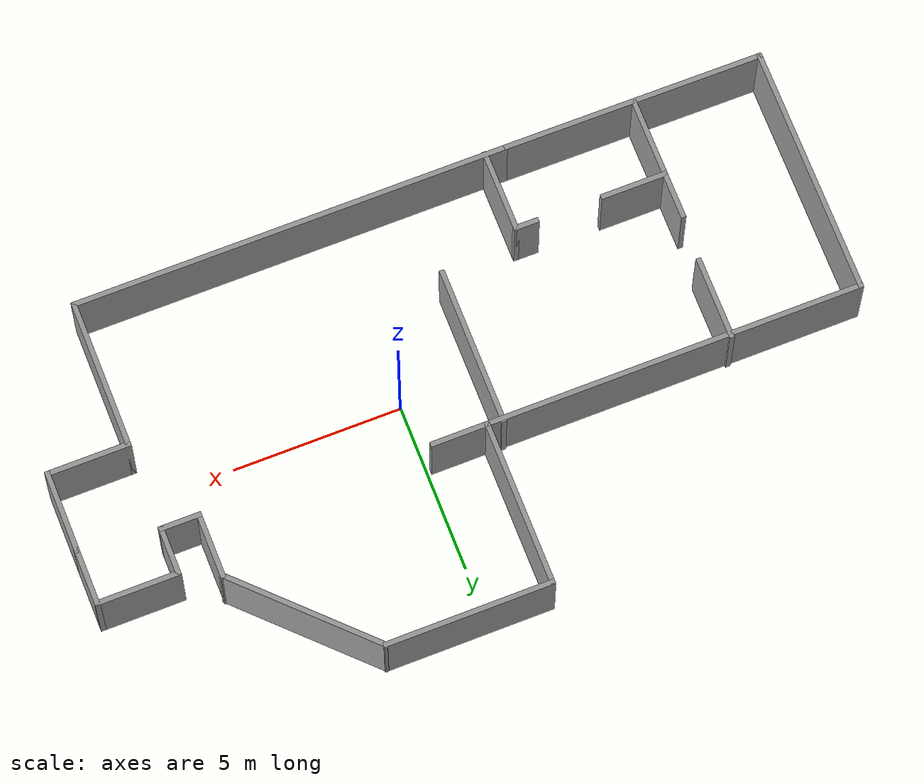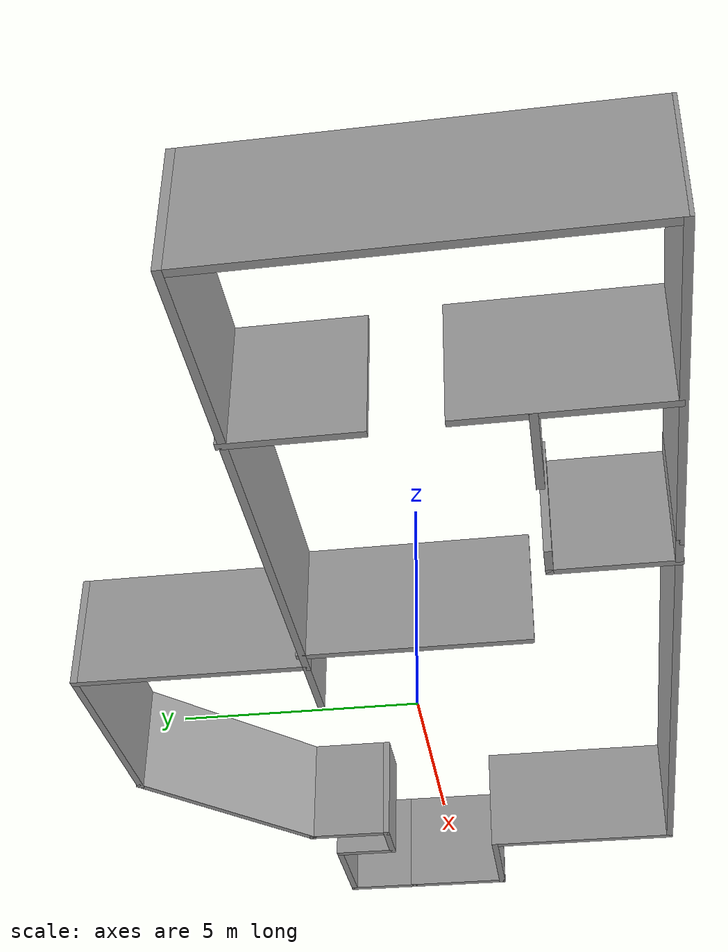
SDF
<?xml version='1.0'?>
<sdf version='1.7'>
  <model name='interior'>
    <pose>-1.47261 0.78127 0 0 -0 0</pose>
    <link name='Wall_10'>
      <collision name='Wall_10_Collision'>
        <geometry>
          <box>
            <size>1.75 0.15 2.5</size>
          </box>
        </geometry>
        <pose>0 0 1.25 0 -0 0</pose>
      </collision>
      <visual name='Wall_10_Visual'>
        <pose>0 0 1.25 0 -0 0</pose>
        <geometry>
          <box>
            <size>1.75 0.15 2.5</size>
          </box>
        </geometry>
        <material>
          <script>
            <uri>file://media/materials/scripts/gazebo.material</uri>
            <name>Gazebo/Grey</name>
          </script>
          <ambient>1 1 1 1</ambient>
        </material>
        <meta>
          <layer>0</layer>
        </meta>
      </visual>
      <pose>11.4149 1.37671 0 0 -0 1.5708</pose>
    </link>
    <link name='Wall_11'>
      <collision name='Wall_11_Collision'>
        <geometry>
          <box>
            <size>2.5 0.15 2.5</size>
          </box>
        </geometry>
        <pose>0 0 1.25 0 -0 0</pose>
      </collision>
      <visual name='Wall_11_Visual'>
        <pose>0 0 1.25 0 -0 0</pose>
        <geometry>
          <box>
            <size>2.5 0.15 2.5</size>
          </box>
        </geometry>
        <material>
          <script>
            <uri>file://media/materials/scripts/gazebo.material</uri>
            <name>Gazebo/Grey</name>
          </script>
          <ambient>1 1 1 1</ambient>
        </material>
        <meta>
          <layer>0</layer>
        </meta>
      </visual>
      <pose>10.2399 2.17671 0 0 -0 3.14159</pose>
    </link>
    <link name='Wall_12'>
      <collision name='Wall_12_Collision'>
        <geometry>
          <box>
            <size>1.5 0.15 2.5</size>
          </box>
        </geometry>
        <pose>0 0 1.25 0 -0 0</pose>
      </collision>
      <visual name='Wall_12_Visual'>
        <pose>0 0 1.25 0 -0 0</pose>
        <geometry>
          <box>
            <size>1.5 0.15 2.5</size>
          </box>
        </geometry>
        <material>
          <script>
            <uri>file://media/materials/scripts/gazebo.material</uri>
            <name>Gazebo/Grey</name>
          </script>
          <ambient>1 1 1 1</ambient>
        </material>
        <meta>
          <layer>0</layer>
        </meta>
      </visual>
      <pose>9.06488 1.50171 0 0 -0 -1.5708</pose>
    </link>
    <link name='Wall_13'>
      <collision name='Wall_13_Collision'>
        <geometry>
          <box>
            <size>1.25 0.15 2.5</size>
          </box>
        </geometry>
        <pose>0 0 1.25 0 -0 0</pose>
      </collision>
      <visual name='Wall_13_Visual'>
        <pose>0 0 1.25 0 -0 0</pose>
        <geometry>
          <box>
            <size>1.25 0.15 2.5</size>
          </box>
        </geometry>
        <material>
          <script>
            <uri>file://media/materials/scripts/gazebo.material</uri>
            <name>Gazebo/Grey</name>
          </script>
          <ambient>1 1 1 1</ambient>
        </material>
        <meta>
          <layer>0</layer>
        </meta>
      </visual>
      <pose>8.51488 0.826707 0 0 -0 3.14159</pose>
    </link>
    <link name='Wall_14'>
      <collision name='Wall_14_Collision'>
        <geometry>
          <box>
            <size>2 0.15 2.5</size>
          </box>
        </geometry>
        <pose>0 0 1.25 0 -0 0</pose>
      </collision>
      <visual name='Wall_14_Visual'>
        <pose>0 0 1.25 0 -0 0</pose>
        <geometry>
          <box>
            <size>2 0.15 2.5</size>
          </box>
        </geometry>
        <material>
          <script>
            <uri>file://media/materials/scripts/gazebo.material</uri>
            <name>Gazebo/Grey</name>
          </script>
          <ambient>1 1 1 1</ambient>
        </material>
        <meta>
          <layer>0</layer>
        </meta>
      </visual>
      <pose>7.96488 1.75171 0 0 -0 1.5708</pose>
    </link>
    <link name='Wall_15'>
      <collision name='Wall_15_Collision'>
        <geometry>
          <box>
            <size>5 0.15 2.5</size>
          </box>
        </geometry>
        <pose>0 0 1.25 0 -0 0</pose>
      </collision>
      <visual name='Wall_15_Visual'>
        <pose>0 0 1.25 0 -0 0</pose>
        <geometry>
          <box>
            <size>5 0.15 2.5</size>
          </box>
        </geometry>
        <material>
          <script>
            <uri>file://media/materials/scripts/gazebo.material</uri>
            <name>Gazebo/Grey</name>
          </script>
          <ambient>1 1 1 1</ambient>
        </material>
        <meta>
          <layer>0</layer>
        </meta>
      </visual>
      <pose>6.25014 4.39144 0 0 -0 2.35619</pose>
    </link>
    <link name='Wall_16'>
      <collision name='Wall_16_Collision'>
        <geometry>
          <box>
            <size>5 0.15 2.5</size>
          </box>
        </geometry>
        <pose>0 0 1.25 0 -0 0</pose>
      </collision>
      <visual name='Wall_16_Visual'>
        <pose>0 0 1.25 0 -0 0</pose>
        <geometry>
          <box>
            <size>5 0.15 2.5</size>
          </box>
        </geometry>
        <material>
          <script>
            <uri>file://media/materials/scripts/gazebo.material</uri>
            <name>Gazebo/Grey</name>
          </script>
          <ambient>1 1 1 1</ambient>
        </material>
        <meta>
          <layer>0</layer>
        </meta>
      </visual>
      <pose>2.11041 6.10618 0 0 -0 3.14159</pose>
    </link>
    <link name='Wall_17'>
      <collision name='Wall_17_Collision'>
        <geometry>
          <box>
            <size>5 0.15 2.5</size>
          </box>
        </geometry>
        <pose>0 0 1.25 0 -0 0</pose>
      </collision>
      <visual name='Wall_17_Visual'>
        <pose>0 0 1.25 0 -0 0</pose>
        <geometry>
          <box>
            <size>5 0.15 2.5</size>
          </box>
        </geometry>
        <material>
          <script>
            <uri>file://media/materials/scripts/gazebo.material</uri>
            <name>Gazebo/Grey</name>
          </script>
          <ambient>1 1 1 1</ambient>
        </material>
        <meta>
          <layer>0</layer>
        </meta>
      </visual>
      <pose>-0.314589 3.68118 0 0 -0 -1.5708</pose>
    </link>
    <link name='Wall_18'>
      <collision name='Wall_18_Collision'>
        <geometry>
          <box>
            <size>1.75 0.15 2.5</size>
          </box>
        </geometry>
        <pose>0 0 1.25 0 -0 0</pose>
      </collision>
      <visual name='Wall_18_Visual'>
        <pose>0 0 1.25 0 -0 0</pose>
        <geometry>
          <box>
            <size>1.75 0.15 2.5</size>
          </box>
        </geometry>
        <material>
          <script>
            <uri>file://media/materials/scripts/gazebo.material</uri>
            <name>Gazebo/Grey</name>
          </script>
          <ambient>1 1 1 1</ambient>
        </material>
        <meta>
          <layer>0</layer>
        </meta>
      </visual>
      <pose>0.485411 1.25618 0 0 -0 0</pose>
    </link>
    <link name='Wall_20'>
      <collision name='Wall_20_Collision'>
        <geometry>
          <box>
            <size>11.25 0.15 2.5</size>
          </box>
        </geometry>
        <pose>0 0 1.25 0 -0 0</pose>
      </collision>
      <visual name='Wall_20_Visual'>
        <pose>0 0 1.25 0 -0 0</pose>
        <geometry>
          <box>
            <size>11.25 0.15 2.5</size>
          </box>
        </geometry>
        <material>
          <script>
            <uri>file://media/materials/scripts/gazebo.material</uri>
            <name>Gazebo/Grey</name>
          </script>
          <ambient>1 1 1 1</ambient>
        </material>
        <meta>
          <layer>0</layer>
        </meta>
      </visual>
      <pose>-5.86459 1.25618 0 0 -0 3.14159</pose>
    </link>
    <link name='Wall_21'>
      <collision name='Wall_21_Collision'>
        <geometry>
          <box>
            <size>7.5 0.15 2.5</size>
          </box>
        </geometry>
        <pose>0 0 1.25 0 -0 0</pose>
      </collision>
      <visual name='Wall_21_Visual'>
        <pose>0 0 1.25 0 -0 0</pose>
        <geometry>
          <box>
            <size>7.5 0.15 2.5</size>
          </box>
        </geometry>
        <material>
          <script>
            <uri>file://media/materials/scripts/gazebo.material</uri>
            <name>Gazebo/Grey</name>
          </script>
          <ambient>1 1 1 1</ambient>
        </material>
        <meta>
          <layer>0</layer>
        </meta>
      </visual>
      <pose>-11.4146 -2.41883 0 0 -0 -1.5708</pose>
    </link>
    <link name='Wall_22'>
      <collision name='Wall_22_Collision'>
        <geometry>
          <box>
            <size>7.77952 0.15 2.5</size>
          </box>
        </geometry>
        <pose>0 0 1.25 0 -0 0</pose>
      </collision>
      <visual name='Wall_22_Visual'>
        <pose>0 0 1.25 0 -0 0</pose>
        <geometry>
          <box>
            <size>7.77952 0.15 2.5</size>
          </box>
        </geometry>
        <material>
          <script>
            <uri>file://media/materials/scripts/gazebo.material</uri>
            <name>Gazebo/Grey</name>
          </script>
          <ambient>1 1 1 1</ambient>
        </material>
        <meta>
          <layer>0</layer>
        </meta>
      </visual>
      <pose>-7.59985 -6.10856 0 0 -0 -0.003862</pose>
    </link>
    <link name='Wall_24'>
      <collision name='Wall_24_Collision'>
        <geometry>
          <box>
            <size>2.5 0.15 2.5</size>
          </box>
        </geometry>
        <pose>0 0 1.25 0 -0 0</pose>
      </collision>
      <visual name='Wall_24_Visual'>
        <pose>0 0 1.25 0 -0 0</pose>
        <geometry>
          <box>
            <size>2.5 0.15 2.5</size>
          </box>
        </geometry>
        <material>
          <script>
            <uri>file://media/materials/scripts/gazebo.material</uri>
            <name>Gazebo/Grey</name>
          </script>
          <ambient>1 1 1 1</ambient>
        </material>
        <meta>
          <layer>0</layer>
        </meta>
      </visual>
      <pose>-7.52526 0.139844 0 0 -0 -1.5708</pose>
    </link>
    <link name='Wall_27'>
      <collision name='Wall_27_Collision'>
        <geometry>
          <box>
            <size>3.75 0.15 2.5</size>
          </box>
        </geometry>
        <pose>0 0 1.25 0 -0 0</pose>
      </collision>
      <visual name='Wall_27_Visual'>
        <pose>0 0 1.25 0 -0 0</pose>
        <geometry>
          <box>
            <size>3.75 0.15 2.5</size>
          </box>
        </geometry>
        <material>
          <script>
            <uri>file://media/materials/scripts/gazebo.material</uri>
            <name>Gazebo/Grey</name>
          </script>
          <ambient>1 1 1 1</ambient>
        </material>
        <meta>
          <layer>0</layer>
        </meta>
      </visual>
      <pose>-7.60663 -4.2492 0 0 -0 1.5708</pose>
    </link>
    <link name='Wall_30'>
      <collision name='Wall_30_Collision'>
        <geometry>
          <box>
            <size>2 0.15 2.5</size>
          </box>
        </geometry>
        <pose>0 0 1.25 0 -0 0</pose>
      </collision>
      <visual name='Wall_30_Visual'>
        <pose>0 0 1.25 0 -0 0</pose>
        <geometry>
          <box>
            <size>2 0.15 2.5</size>
          </box>
        </geometry>
        <material>
          <script>
            <uri>file://media/materials/scripts/gazebo.material</uri>
            <name>Gazebo/Grey</name>
          </script>
          <ambient>1 1 1 1</ambient>
        </material>
        <meta>
          <layer>0</layer>
        </meta>
      </visual>
      <pose>-6.68163 -3.77082 0 0 -0 0</pose>
    </link>
    <link name='Wall_33'>
      <collision name='Wall_33_Collision'>
        <geometry>
          <box>
            <size>2.5 0.15 2.5</size>
          </box>
        </geometry>
        <pose>0 0 1.25 0 -0 0</pose>
      </collision>
      <visual name='Wall_33_Visual'>
        <pose>0 0 1.25 0 -0 0</pose>
        <geometry>
          <box>
            <size>2.5 0.15 2.5</size>
          </box>
        </geometry>
        <material>
          <script>
            <uri>file://media/materials/scripts/gazebo.material</uri>
            <name>Gazebo/Grey</name>
          </script>
          <ambient>1 1 1 1</ambient>
        </material>
        <meta>
          <layer>0</layer>
        </meta>
      </visual>
      <pose>-3.1488 -4.96224 0 0 -0 1.5708</pose>
    </link>
    <link name='Wall_34'>
      <collision name='Wall_34_Collision'>
        <geometry>
          <box>
            <size>0.75 0.15 2.5</size>
          </box>
        </geometry>
        <pose>0 0 1.25 0 -0 0</pose>
      </collision>
      <visual name='Wall_34_Visual'>
        <pose>0 0 1.25 0 -0 0</pose>
        <geometry>
          <box>
            <size>0.75 0.15 2.5</size>
          </box>
        </geometry>
        <material>
          <script>
            <uri>file://media/materials/scripts/gazebo.material</uri>
            <name>Gazebo/Grey</name>
          </script>
          <ambient>1 1 1 1</ambient>
        </material>
        <meta>
          <layer>0</layer>
        </meta>
      </visual>
      <pose>-3.4488 -3.78724 0 0 -0 3.14159</pose>
    </link>
    <link name='Wall_36'>
      <collision name='Wall_36_Collision'>
        <geometry>
          <box>
            <size>4.75 0.15 2.5</size>
          </box>
        </geometry>
        <pose>0 0 1.25 0 -0 0</pose>
      </collision>
      <visual name='Wall_36_Visual'>
        <pose>0 0 1.25 0 -0 0</pose>
        <geometry>
          <box>
            <size>4.75 0.15 2.5</size>
          </box>
        </geometry>
        <material>
          <script>
            <uri>file://media/materials/scripts/gazebo.material</uri>
            <name>Gazebo/Grey</name>
          </script>
          <ambient>1 1 1 1</ambient>
        </material>
        <meta>
          <layer>0</layer>
        </meta>
      </visual>
      <pose>-0.766147 -0.993508 0 0 -0 -1.5708</pose>
    </link>
    <link name='Wall_6'>
      <collision name='Wall_6_Collision'>
        <geometry>
          <box>
            <size>13 0.15 2.5</size>
          </box>
        </geometry>
        <pose>0 0 1.25 0 -0 0</pose>
      </collision>
      <visual name='Wall_6_Visual'>
        <pose>0 0 1.25 0 -0 0</pose>
        <geometry>
          <box>
            <size>13 0.15 2.5</size>
          </box>
        </geometry>
        <material>
          <script>
            <uri>file://media/materials/scripts/gazebo.material</uri>
            <name>Gazebo/Grey</name>
          </script>
          <ambient>1 1 1 1</ambient>
        </material>
        <meta>
          <layer>0</layer>
        </meta>
      </visual>
      <pose>2.63988 -6.12329 0 0 -0 0</pose>
    </link>
    <link name='Wall_7'>
      <collision name='Wall_7_Collision'>
        <geometry>
          <box>
            <size>4.5 0.15 2.5</size>
          </box>
        </geometry>
        <pose>0 0 1.25 0 -0 0</pose>
      </collision>
      <visual name='Wall_7_Visual'>
        <pose>0 0 1.25 0 -0 0</pose>
        <geometry>
          <box>
            <size>4.5 0.15 2.5</size>
          </box>
        </geometry>
        <material>
          <script>
            <uri>file://media/materials/scripts/gazebo.material</uri>
            <name>Gazebo/Grey</name>
          </script>
          <ambient>1 1 1 1</ambient>
        </material>
        <meta>
          <layer>0</layer>
        </meta>
      </visual>
      <pose>9.06488 -3.94829 0 0 -0 1.5708</pose>
    </link>
    <link name='Wall_8'>
      <collision name='Wall_8_Collision'>
        <geometry>
          <box>
            <size>2.5 0.15 2.5</size>
          </box>
        </geometry>
        <pose>0 0 1.25 0 -0 0</pose>
      </collision>
      <visual name='Wall_8_Visual'>
        <pose>0 0 1.25 0 -0 0</pose>
        <geometry>
          <box>
            <size>2.5 0.15 2.5</size>
          </box>
        </geometry>
        <material>
          <script>
            <uri>file://media/materials/scripts/gazebo.material</uri>
            <name>Gazebo/Grey</name>
          </script>
          <ambient>1 1 1 1</ambient>
        </material>
        <meta>
          <layer>0</layer>
        </meta>
      </visual>
      <pose>10.2399 -1.77329 0 0 -0 0</pose>
    </link>
    <link name='Wall_9'>
      <collision name='Wall_9_Collision'>
        <geometry>
          <box>
            <size>2.5 0.15 2.5</size>
          </box>
        </geometry>
        <pose>0 0 1.25 0 -0 0</pose>
      </collision>
      <visual name='Wall_9_Visual'>
        <pose>0 0 1.25 0 -0 0</pose>
        <geometry>
          <box>
            <size>2.5 0.15 2.5</size>
          </box>
        </geometry>
        <material>
          <script>
            <uri>file://media/materials/scripts/gazebo.material</uri>
            <name>Gazebo/Grey</name>
          </script>
          <ambient>1 1 1 1</ambient>
        </material>
        <meta>
          <layer>0</layer>
        </meta>
      </visual>
      <pose>11.4149 -0.598293 0 0 -0 1.5708</pose>
    </link>
    <static>1</static>
  </model>
</sdf>
